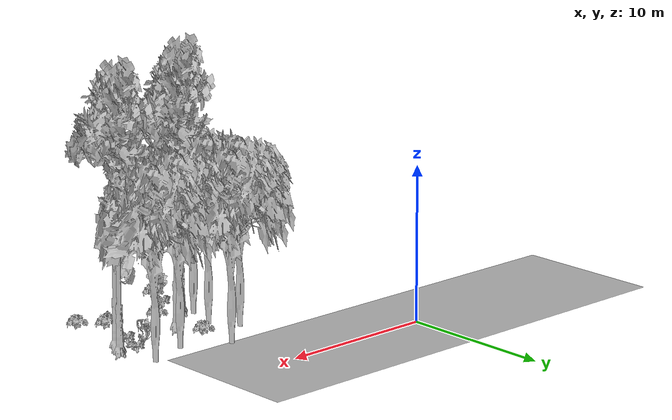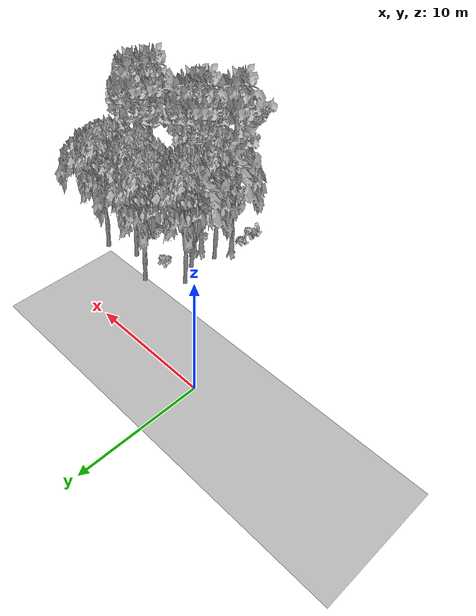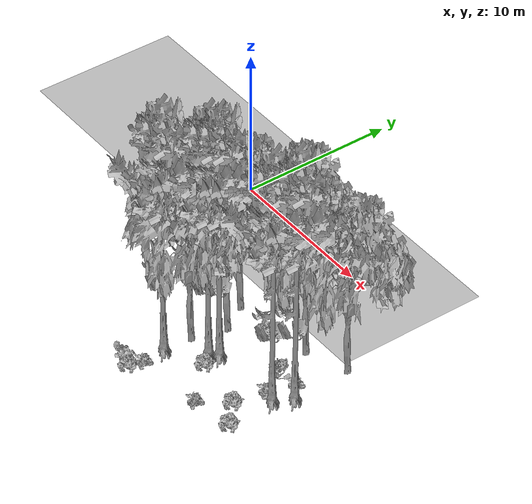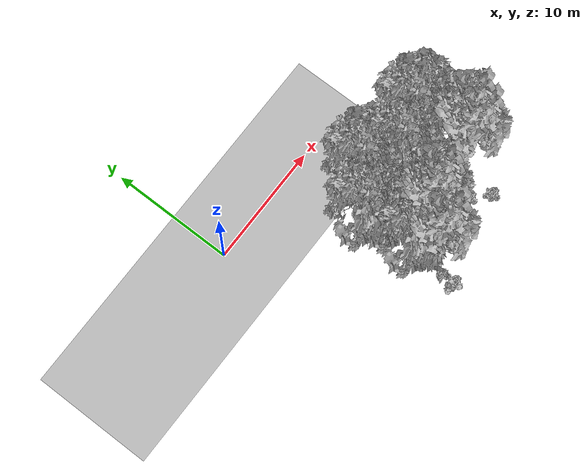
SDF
<sdf version="1.7">
 <world name="default">
  <model name="ground_plane">
   <static>1</static>
   <link name="link">
    <collision name="collision">
     <geometry><plane><normal>0 0 1</normal><size>100 100</size></plane></geometry>
     <surface><contact><ode><min_depth>0.01</min_depth><max_vel>0</max_vel></ode></contact></surface>
    </collision>
    <visual name="grass">
     <cast_shadows>0</cast_shadows>
     <geometry>
      <mesh>
       <scale>0.5814285714285714 0.18142857142857144 0.1</scale>
       <uri>file://grass_plane/meshes/grass_plane.dae</uri>
      </mesh>
     </geometry>
    </visual>
   </link>
  </model>
  <model name="Tree 35">
   <static>1</static>
   <pose>8.299400189004785 -6.90327430463309 0 1.57079 -0 0</pose>
   <link name="link">
    <collision name="collision">
     <geometry><mesh><scale>3.5 5 3.5</scale><uri>model://tree_2/meshes/tree_2.obj</uri></mesh></geometry>
    </collision>
    <visual name="visual">
     <geometry><mesh><scale>3.5 5 3.5</scale><uri>model://tree_2/meshes/tree_2.obj</uri></mesh></geometry>
    </visual>
   </link>
  </model>
  <model name="Tree 40">
   <static>1</static>
   <pose>8.52702489070306 -12.382336699466435 0 1.57079 -0 0</pose>
   <link name="link">
    <collision name="collision">
     <geometry><mesh><scale>3.5 5 3.5</scale><uri>model://tree_9/meshes/tree_9.obj</uri></mesh></geometry>
    </collision>
    <visual name="visual">
     <geometry><mesh><scale>3.5 5 3.5</scale><uri>model://tree_9/meshes/tree_9.obj</uri></mesh></geometry>
    </visual>
   </link>
  </model>
  <model name="Tree 141">
   <static>1</static>
   <pose>10.786465888355657 -4.756251500701277 0 1.57079 -0 0</pose>
   <link name="link">
    <collision name="collision">
     <geometry><mesh><scale>3.5 5 3.5</scale><uri>model://tree_2/meshes/tree_2.obj</uri></mesh></geometry>
    </collision>
    <visual name="visual">
     <geometry><mesh><scale>3.5 5 3.5</scale><uri>model://tree_2/meshes/tree_2.obj</uri></mesh></geometry>
    </visual>
   </link>
  </model>
  <model name="Tree 151">
   <static>1</static>
   <pose>9.379874073951761 -8.607865086358004 0 1.57079 -0 0</pose>
   <link name="link">
    <collision name="collision">
     <geometry><mesh><scale>3.5 5 3.5</scale><uri>model://tree_2/meshes/tree_2.obj</uri></mesh></geometry>
    </collision>
    <visual name="visual">
     <geometry><mesh><scale>3.5 5 3.5</scale><uri>model://tree_2/meshes/tree_2.obj</uri></mesh></geometry>
    </visual>
   </link>
  </model>
  <model name="Tree 236">
   <static>1</static>
   <pose>10.336588032073017 -10.545566458235527 0 1.57079 -0 0</pose>
   <link name="link">
    <collision name="collision">
     <geometry><mesh><scale>3.5 5 3.5</scale><uri>model://tree_9/meshes/tree_9.obj</uri></mesh></geometry>
    </collision>
    <visual name="visual">
     <geometry><mesh><scale>3.5 5 3.5</scale><uri>model://tree_9/meshes/tree_9.obj</uri></mesh></geometry>
    </visual>
   </link>
  </model>
  <model name="Tree 268">
   <static>1</static>
   <pose>16.189677112320837 -8.813084037648762 0 1.57079 -0 0</pose>
   <link name="link">
    <collision name="collision">
     <geometry><mesh><scale>3.5 5 3.5</scale><uri>model://tree_9/meshes/tree_9.obj</uri></mesh></geometry>
    </collision>
    <visual name="visual">
     <geometry><mesh><scale>3.5 5 3.5</scale><uri>model://tree_9/meshes/tree_9.obj</uri></mesh></geometry>
    </visual>
   </link>
  </model>
  <model name="Tree 311">
   <static>1</static>
   <pose>16.242660068527613 -5.225169441675337 0 1.57079 -0 0</pose>
   <link name="link">
    <collision name="collision">
     <geometry><mesh><scale>3.5 5 3.5</scale><uri>model://tree_2/meshes/tree_2.obj</uri></mesh></geometry>
    </collision>
    <visual name="visual">
     <geometry><mesh><scale>3.5 5 3.5</scale><uri>model://tree_2/meshes/tree_2.obj</uri></mesh></geometry>
    </visual>
   </link>
  </model>
  <model name="Tree 345">
   <static>1</static>
   <pose>13.602070685583868 -6.174353334868577 0 1.57079 -0 0</pose>
   <link name="link">
    <collision name="collision">
     <geometry><mesh><scale>3.5 5 3.5</scale><uri>model://tree_2/meshes/tree_2.obj</uri></mesh></geometry>
    </collision>
    <visual name="visual">
     <geometry><mesh><scale>3.5 5 3.5</scale><uri>model://tree_2/meshes/tree_2.obj</uri></mesh></geometry>
    </visual>
   </link>
  </model>
  <model name="Tree 355">
   <static>1</static>
   <pose>10.78351560611442 -10.102773285057774 0 1.57079 -0 0</pose>
   <link name="link">
    <collision name="collision">
     <geometry><mesh><scale>3.5 5 3.5</scale><uri>model://tree_9/meshes/tree_9.obj</uri></mesh></geometry>
    </collision>
    <visual name="visual">
     <geometry><mesh><scale>3.5 5 3.5</scale><uri>model://tree_9/meshes/tree_9.obj</uri></mesh></geometry>
    </visual>
   </link>
  </model>
  <model name="Tree 403">
   <static>1</static>
   <pose>15.601750435487133 -9.955692384379496 0 1.57079 -0 0</pose>
   <link name="link">
    <collision name="collision">
     <geometry><mesh><scale>3.5 5 3.5</scale><uri>model://tree_9/meshes/tree_9.obj</uri></mesh></geometry>
    </collision>
    <visual name="visual">
     <geometry><mesh><scale>3.5 5 3.5</scale><uri>model://tree_9/meshes/tree_9.obj</uri></mesh></geometry>
    </visual>
   </link>
  </model>
  <model name="Tree 430">
   <static>1</static>
   <pose>8.813741071496665 -10.757391743673228 0 1.57079 -0 0</pose>
   <link name="link">
    <collision name="collision">
     <geometry><mesh><scale>3.5 5 3.5</scale><uri>model://tree_2/meshes/tree_2.obj</uri></mesh></geometry>
    </collision>
    <visual name="visual">
     <geometry><mesh><scale>3.5 5 3.5</scale><uri>model://tree_2/meshes/tree_2.obj</uri></mesh></geometry>
    </visual>
   </link>
  </model>
  <model name="Bush 51">
   <static>1</static>
   <pose>13.201415367117463 -13.578020996192082 0 1.57079 -0 0</pose>
   <link name="link">
    <collision name="collision">
     <geometry><mesh><scale>2 2 2</scale><uri>model://bush_2/meshes/bush_2.obj</uri></mesh></geometry>
     <surface><contact><collide_without_contact>false</collide_without_contact></contact></surface>
    </collision>
    <visual name="visual">
     <geometry><mesh><scale>2 2 2</scale><uri>model://bush_2/meshes/bush_2.obj</uri></mesh></geometry>
    </visual>
   </link>
  </model>
  <model name="Bush 77">
   <static>1</static>
   <pose>16.16977487800797 -13.232115031999793 0 1.57079 -0 0</pose>
   <link name="link">
    <collision name="collision">
     <geometry><mesh><scale>2 2 2</scale><uri>model://bush_3/meshes/bush_3.obj</uri></mesh></geometry>
     <surface><contact><collide_without_contact>false</collide_without_contact></contact></surface>
    </collision>
    <visual name="visual">
     <geometry><mesh><scale>2 2 2</scale><uri>model://bush_3/meshes/bush_3.obj</uri></mesh></geometry>
    </visual>
   </link>
  </model>
  <model name="Bush 105">
   <static>1</static>
   <pose>8.388071712725484 -14.995222027188401 0 1.57079 -0 0</pose>
   <link name="link">
    <collision name="collision">
     <geometry><mesh><scale>2 2 2</scale><uri>model://bush_0/meshes/bush_0.obj</uri></mesh></geometry>
     <surface><contact><collide_without_contact>false</collide_without_contact></contact></surface>
    </collision>
    <visual name="visual">
     <geometry><mesh><scale>2 2 2</scale><uri>model://bush_0/meshes/bush_0.obj</uri></mesh></geometry>
    </visual>
   </link>
  </model>
  <model name="Bush 155">
   <static>1</static>
   <pose>8.804198839320279 -14.012221118383042 0 1.57079 -0 0</pose>
   <link name="link">
    <collision name="collision">
     <geometry><mesh><scale>2 2 2</scale><uri>model://bush_2/meshes/bush_2.obj</uri></mesh></geometry>
     <surface><contact><collide_without_contact>false</collide_without_contact></contact></surface>
    </collision>
    <visual name="visual">
     <geometry><mesh><scale>2 2 2</scale><uri>model://bush_2/meshes/bush_2.obj</uri></mesh></geometry>
    </visual>
   </link>
  </model>
  <model name="Bush 172">
   <static>1</static>
   <pose>15.42616401692868 -8.222164228882956 0 1.57079 -0 0</pose>
   <link name="link">
    <collision name="collision">
     <geometry><mesh><scale>2 2 2</scale><uri>model://bush_2/meshes/bush_2.obj</uri></mesh></geometry>
     <surface><contact><collide_without_contact>false</collide_without_contact></contact></surface>
    </collision>
    <visual name="visual">
     <geometry><mesh><scale>2 2 2</scale><uri>model://bush_2/meshes/bush_2.obj</uri></mesh></geometry>
    </visual>
   </link>
  </model>
  <model name="Bush 189">
   <static>1</static>
   <pose>11.362053363479113 -11.4529171907131 0 1.57079 -0 0</pose>
   <link name="link">
    <collision name="collision">
     <geometry><mesh><scale>2 2 2</scale><uri>model://bush_3/meshes/bush_3.obj</uri></mesh></geometry>
     <surface><contact><collide_without_contact>false</collide_without_contact></contact></surface>
    </collision>
    <visual name="visual">
     <geometry><mesh><scale>2 2 2</scale><uri>model://bush_3/meshes/bush_3.obj</uri></mesh></geometry>
    </visual>
   </link>
  </model>
  <model name="Bush 221">
   <static>1</static>
   <pose>11.237017538597932 -7.092399145228208 0 1.57079 -0 0</pose>
   <link name="link">
    <collision name="collision">
     <geometry><mesh><scale>2 2 2</scale><uri>model://bush_3/meshes/bush_3.obj</uri></mesh></geometry>
     <surface><contact><collide_without_contact>false</collide_without_contact></contact></surface>
    </collision>
    <visual name="visual">
     <geometry><mesh><scale>2 2 2</scale><uri>model://bush_3/meshes/bush_3.obj</uri></mesh></geometry>
    </visual>
   </link>
  </model>
  <model name="Bush 236">
   <static>1</static>
   <pose>8.86084694562338 -14.984714912885003 0 1.57079 -0 0</pose>
   <link name="link">
    <collision name="collision">
     <geometry><mesh><scale>2 2 2</scale><uri>model://bush_3/meshes/bush_3.obj</uri></mesh></geometry>
     <surface><contact><collide_without_contact>false</collide_without_contact></contact></surface>
    </collision>
    <visual name="visual">
     <geometry><mesh><scale>2 2 2</scale><uri>model://bush_3/meshes/bush_3.obj</uri></mesh></geometry>
    </visual>
   </link>
  </model>
  <model name="Bush 240">
   <static>1</static>
   <pose>14.881199816002535 -9.881504802508328 0 1.57079 -0 0</pose>
   <link name="link">
    <collision name="collision">
     <geometry><mesh><scale>2 2 2</scale><uri>model://bush_2/meshes/bush_2.obj</uri></mesh></geometry>
     <surface><contact><collide_without_contact>false</collide_without_contact></contact></surface>
    </collision>
    <visual name="visual">
     <geometry><mesh><scale>2 2 2</scale><uri>model://bush_2/meshes/bush_2.obj</uri></mesh></geometry>
    </visual>
   </link>
  </model>
  <model name="Bush 297">
   <static>1</static>
   <pose>14.878098508964563 -12.040313331821295 0 1.57079 -0 0</pose>
   <link name="link">
    <collision name="collision">
     <geometry><mesh><scale>2 2 2</scale><uri>model://bush_3/meshes/bush_3.obj</uri></mesh></geometry>
     <surface><contact><collide_without_contact>false</collide_without_contact></contact></surface>
    </collision>
    <visual name="visual">
     <geometry><mesh><scale>2 2 2</scale><uri>model://bush_3/meshes/bush_3.obj</uri></mesh></geometry>
    </visual>
   </link>
  </model>
  <model name="Bush 327">
   <static>1</static>
   <pose>14.365898769171984 -8.696549736689898 0 1.57079 -0 0</pose>
   <link name="link">
    <collision name="collision">
     <geometry><mesh><scale>2 2 2</scale><uri>model://bush_4/meshes/bush_4.obj</uri></mesh></geometry>
     <surface><contact><collide_without_contact>false</collide_without_contact></contact></surface>
    </collision>
    <visual name="visual">
     <geometry><mesh><scale>2 2 2</scale><uri>model://bush_4/meshes/bush_4.obj</uri></mesh></geometry>
    </visual>
   </link>
  </model>
 </world>
</sdf>
